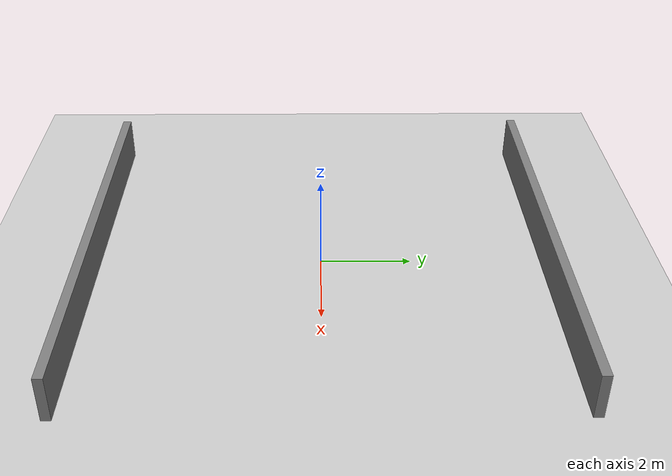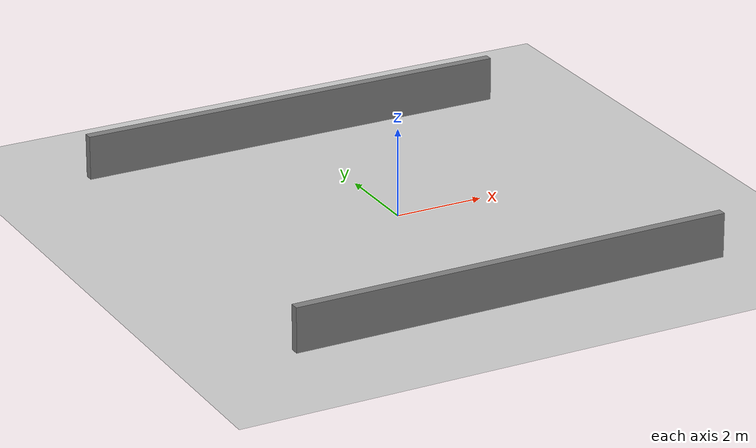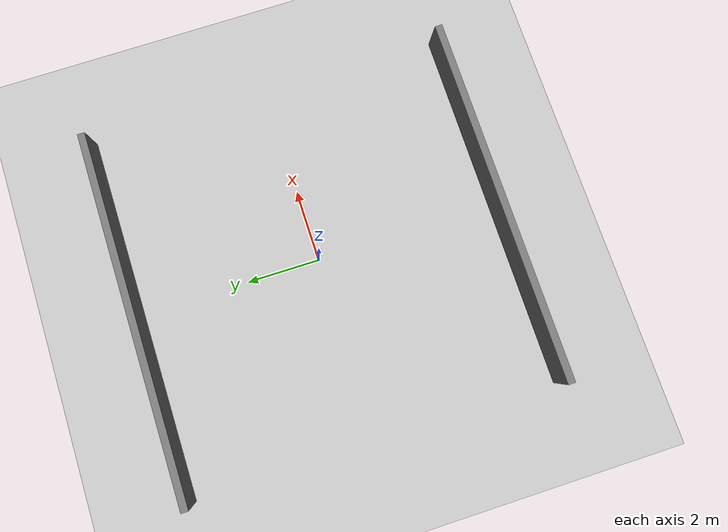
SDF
<?xml version="1.0" ?>
<sdf version="1.6">
  <world name="gesture_robot_world">

    <!-- Luce solare -->
    <include>
      <uri>model://sun</uri>
    </include>

    <!-- Piano di terra -->
    <include>
      <uri>model://ground_plane</uri>
    </include>

    <!-- Fisica -->
    <physics type="ode">
      <real_time_update_rate>1000.0</real_time_update_rate>
      <max_step_size>0.001</max_step_size>
      <real_time_factor>1</real_time_factor>
    </physics>

    <!-- Alcuni muri semplici come ostacoli opzionali -->
    <model name="wall_north">
      <static>true</static>
      <pose>0 5 0.5 0 0 0</pose>
      <link name="link">
        <collision name="collision">
          <geometry><box><size>10 0.2 1</size></box></geometry>
        </collision>
        <visual name="visual">
          <geometry><box><size>10 0.2 1</size></box></geometry>
          <material>
            <ambient>0.5 0.5 0.5 1</ambient>
          </material>
        </visual>
      </link>
    </model>

    <model name="wall_south">
      <static>true</static>
      <pose>0 -5 0.5 0 0 0</pose>
      <link name="link">
        <collision name="collision">
          <geometry><box><size>10 0.2 1</size></box></geometry>
        </collision>
        <visual name="visual">
          <geometry><box><size>10 0.2 1</size></box></geometry>
          <material>
            <ambient>0.5 0.5 0.5 1</ambient>
          </material>
        </visual>
      </link>
    </model>

  </world>
</sdf>
